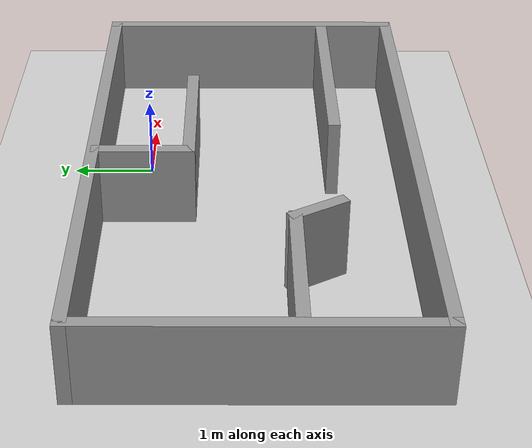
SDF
<sdf version="1.7">
 <world name="default">
  <light name="sun" type="directional">
   <pose>0 0 10 0 -0 0</pose>
   <diffuse>0.8 0.8 0.8 1</diffuse>
   <specular>0.2 0.2 0.2 1</specular>
   <attenuation>
    <range>1000</range>
    <constant>0.9</constant>
    <linear>0.01</linear>
    <quadratic>0.001</quadratic>
   </attenuation>
   <direction>-0.5 0.1 -0.9</direction>
   <spot><inner_angle>0</inner_angle><outer_angle>0</outer_angle><falloff>0</falloff></spot>
  </light>
  <model name="ground_plane">
   <static>1</static>
   <link name="link">
    <collision name="collision">
     <geometry><plane><normal>0 0 1</normal><size>100 100</size></plane></geometry>
     <surface>
      <contact><collide_bitmask>65535</collide_bitmask></contact>
      <friction><ode><mu>100</mu><mu2>50</mu2></ode></friction>
     </surface>
    </collision>
    <visual name="visual">
     <cast_shadows>0</cast_shadows>
     <geometry><plane><normal>0 0 1</normal><size>100 100</size></plane></geometry>
     <material>
      <script><uri>file://media/materials/scripts/gazebo.material</uri><name>Gazebo/Grey</name></script>
     </material>
    </visual>
   </link>
  </model>
  <gravity>0 0 -9.8</gravity>
  <magnetic_field>6e-06 2.3e-05 -4.2e-05</magnetic_field>
  <atmosphere type="adiabatic"/>
  <physics type="ode">
   <max_step_size>0.001</max_step_size>
   <real_time_factor>1</real_time_factor>
   <real_time_update_rate>1000</real_time_update_rate>
  </physics>
  <scene><ambient>0.4 0.4 0.4 1</ambient><background>0.7 0.7 0.7 1</background><shadows>1</shadows></scene>
  <audio><device>default</device></audio>
  <spherical_coordinates>
   <surface_model>EARTH_WGS84</surface_model>
   <latitude_deg>0</latitude_deg>
   <longitude_deg>0</longitude_deg>
   <elevation>0</elevation>
   <heading_deg>0</heading_deg>
  </spherical_coordinates>
  <model name="Untitled">
   <pose>-0.994732 -0.289335 0 0 -0 0</pose>
   <link name="Wall_0">
    <collision name="Wall_0_Collision">
     <geometry><box><size>4 0.15 1</size></box></geometry>
     <pose>0 0 0.5 0 -0 0</pose>
    </collision>
    <visual name="Wall_0_Visual">
     <pose>0 0 0.5 0 -0 0</pose>
     <geometry><box><size>4 0.15 1</size></box></geometry>
     <material>
      <script><uri>file://media/materials/scripts/gazebo.material</uri><name>Gazebo/Grey</name></script>
      <ambient>1 1 1 1</ambient>
     </material>
     <meta><layer>0</layer></meta>
    </visual>
    <pose>-3.425 -1.0175 0 0 -0 -1.5708</pose>
   </link>
   <link name="Wall_1">
    <collision name="Wall_1_Collision">
     <geometry><box><size>7 0.15 1</size></box></geometry>
     <pose>0 0 0.5 0 -0 0</pose>
    </collision>
    <visual name="Wall_1_Visual">
     <pose>0 0 0.5 0 -0 0</pose>
     <geometry><box><size>7 0.15 1</size></box></geometry>
     <material>
      <script><uri>file://media/materials/scripts/gazebo.material</uri><name>Gazebo/Grey</name></script>
      <ambient>1 1 1 1</ambient>
     </material>
     <meta><layer>0</layer></meta>
    </visual>
    <pose>0 -2.9425 0 0 -0 0</pose>
   </link>
   <link name="Wall_11">
    <collision name="Wall_11_Collision">
     <geometry><box><size>3 0.15 1</size></box></geometry>
     <pose>0 0 0.5 0 -0 0</pose>
    </collision>
    <visual name="Wall_11_Visual">
     <pose>0 0 0.5 0 -0 0</pose>
     <geometry><box><size>3 0.15 1</size></box></geometry>
     <material>
      <script><uri>file://media/materials/scripts/gazebo.material</uri><name>Gazebo/Grey</name></script>
      <ambient>1 1 1 1</ambient>
     </material>
     <meta><layer>0</layer></meta>
    </visual>
    <pose>1.95 -2.0225 0 0 -0 3.14159</pose>
   </link>
   <link name="Wall_2">
    <collision name="Wall_2_Collision">
     <geometry><box><size>4 0.15 1</size></box></geometry>
     <pose>0 0 0.5 0 -0 0</pose>
    </collision>
    <visual name="Wall_2_Visual">
     <pose>0 0 0.5 0 -0 0</pose>
     <geometry><box><size>4 0.15 1</size></box></geometry>
     <material>
      <script><uri>file://media/materials/scripts/gazebo.material</uri><name>Gazebo/Grey</name></script>
      <ambient>1 1 1 1</ambient>
     </material>
     <meta><layer>0</layer></meta>
    </visual>
    <pose>3.425 -1.0175 0 0 -0 1.5708</pose>
   </link>
   <link name="Wall_3">
    <collision name="Wall_3_Collision">
     <geometry><box><size>7 0.15 1</size></box></geometry>
     <pose>0 0 0.5 0 -0 0</pose>
    </collision>
    <visual name="Wall_3_Visual">
     <pose>0 0 0.5 0 -0 0</pose>
     <geometry><box><size>7 0.15 1</size></box></geometry>
     <material>
      <script><uri>file://media/materials/scripts/gazebo.material</uri><name>Gazebo/Grey</name></script>
      <ambient>1 1 1 1</ambient>
     </material>
     <meta><layer>0</layer></meta>
    </visual>
    <pose>0 0.9075 0 0 -0 3.14159</pose>
   </link>
   <link name="Wall_5">
    <collision name="Wall_5_Collision">
     <geometry><box><size>2 0.15 1</size></box></geometry>
     <pose>0 0 0.5 0 -0 0</pose>
    </collision>
    <visual name="Wall_5_Visual">
     <pose>0 0 0.5 0 -0 0</pose>
     <geometry><box><size>2 0.15 1</size></box></geometry>
     <material>
      <script><uri>file://media/materials/scripts/gazebo.material</uri><name>Gazebo/Grey</name></script>
      <ambient>1 1 1 1</ambient>
     </material>
     <meta><layer>0</layer></meta>
    </visual>
    <pose>-2.47 -1.4625 0 0 -0 0</pose>
   </link>
   <link name="Wall_6">
    <collision name="Wall_6_Collision">
     <geometry><box><size>0.75 0.15 1</size></box></geometry>
     <pose>0 0 0.5 0 -0 0</pose>
    </collision>
    <visual name="Wall_6_Visual">
     <pose>0 0 0.5 0 -0 0</pose>
     <geometry><box><size>0.75 0.15 1</size></box></geometry>
     <material>
      <script><uri>file://media/materials/scripts/gazebo.material</uri><name>Gazebo/Grey</name></script>
      <ambient>1 1 1 1</ambient>
     </material>
     <meta><layer>0</layer></meta>
    </visual>
    <pose>-1.395 -1.7225 0 0 -0 -1.04752</pose>
   </link>
   <link name="Wall_8">
    <collision name="Wall_8_Collision">
     <geometry><box><size>1.25 0.15 1</size></box></geometry>
     <pose>0 0 0.5 0 -0 0</pose>
    </collision>
    <visual name="Wall_8_Visual">
     <pose>0 0 0.5 0 -0 0</pose>
     <geometry><box><size>1.25 0.15 1</size></box></geometry>
     <material>
      <script><uri>file://media/materials/scripts/gazebo.material</uri><name>Gazebo/Grey</name></script>
      <ambient>1 1 1 1</ambient>
     </material>
     <meta><layer>0</layer></meta>
    </visual>
    <pose>-0.125 0.3075 0 0 -0 -1.5708</pose>
   </link>
   <link name="Wall_9">
    <collision name="Wall_9_Collision">
     <geometry><box><size>2 0.15 1</size></box></geometry>
     <pose>0 0 0.5 0 -0 0</pose>
    </collision>
    <visual name="Wall_9_Visual">
     <pose>0 0 0.5 0 -0 0</pose>
     <geometry><box><size>2 0.15 1</size></box></geometry>
     <material>
      <script><uri>file://media/materials/scripts/gazebo.material</uri><name>Gazebo/Grey</name></script>
      <ambient>1 1 1 1</ambient>
     </material>
     <meta><layer>0</layer></meta>
    </visual>
    <pose>0.8 -0.2425 0 0 -0 0</pose>
   </link>
   <static>1</static>
  </model>
 </world>
</sdf>
